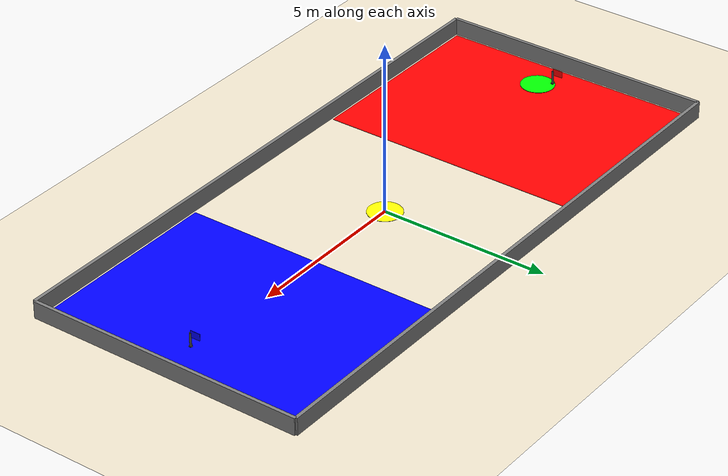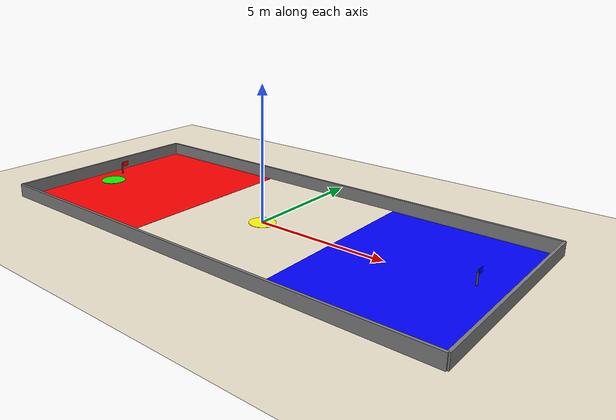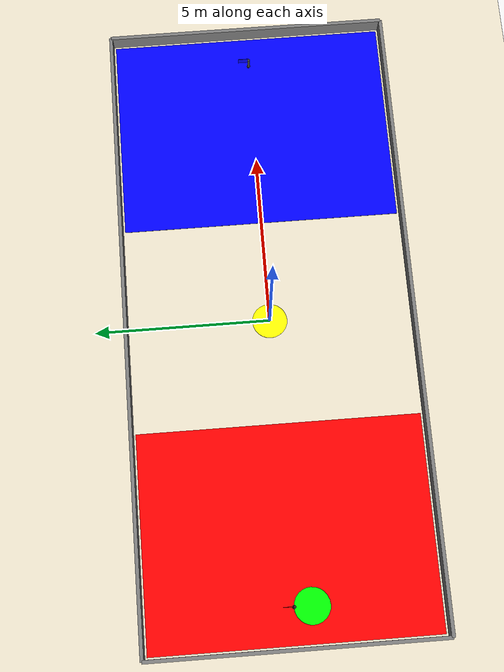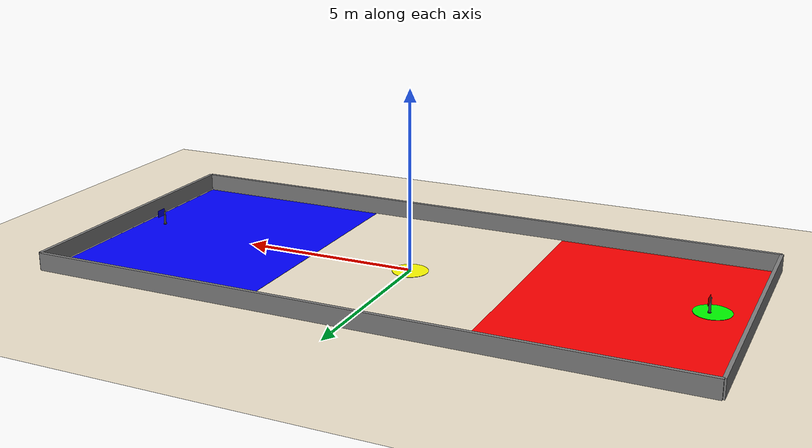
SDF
<sdf version="1.8">
 <world name="capture_the_flag_world">
  <plugin filename="ignition-gazebo-physics-system" name="ignition::gazebo::systems::Physics"/>
  <plugin filename="ignition-gazebo-user-commands-system" name="ignition::gazebo::systems::UserCommands"/>
  <plugin filename="ignition-gazebo-scene-broadcaster-system" name="ignition::gazebo::systems::SceneBroadcaster"/>
  <plugin filename="ignition-gazebo-sensors-system" name="ignition::gazebo::systems::Sensors">
   <render_engine>ogre2</render_engine>
  </plugin>
  <plugin filename="libignition-gazebo-contact-system.so" name="ignition::gazebo::systems::Contact"/>
  <scene><ambient>1.0 1.0 1.0</ambient><background>0.8 0.8 0.8</background></scene>
  <light name="sun" type="directional">
   <pose>0 0 10 0 0 0</pose>
   <diffuse>0.8 0.8 0.8 1</diffuse>
   <specular>0.2 0.2 0.2 1</specular>
   <attenuation>
    <range>1000</range>
    <constant>0.9</constant>
    <linear>0.01</linear>
    <quadratic>0.001</quadratic>
   </attenuation>
   <direction>-0.5 0.1 -0.9</direction>
  </light>
  <model name="ground_plane">
   <static>1</static>
   <plugin filename="ignition-gazebo-label-system" name="ignition::gazebo::systems::Label">
    <label>5</label>
   </plugin>
   <link name="ground_plane_link">
    <collision name="ground_plane_collision">
     <geometry><plane><normal>0 0 1</normal><size>100.0 100.0</size></plane></geometry>
    </collision>
    <visual name="ground_plane_visual">
     <cast_shadows>0</cast_shadows>
     <geometry><plane><normal>0 0 1</normal><size>100.0 100.0</size></plane></geometry>
     <material>
      <ambient>0.94 0.90 0.81 1</ambient>
      <diffuse>0.94 0.90 0.81 1</diffuse>
      <specular>1 1 1 0</specular>
     </material>
    </visual>
   </link>
  </model>
  <model name="red_base">
   <pose>-6.0 0 0 0 0 0</pose>
   <static>1</static>
   <plugin filename="ignition-gazebo-label-system" name="ignition::gazebo::systems::Label">
    <label>10</label>
   </plugin>
   <link name="red_base_link">
    <collision name="red_base_collision"><geometry><box><size>6 8 0.01</size></box></geometry></collision>
    <visual name="red_base_visual">
     <geometry><box><size>6 8 0.01</size></box></geometry>
     <material><ambient>1 0 0 1</ambient><diffuse>1 0 0 1</diffuse></material>
    </visual>
   </link>
  </model>
  <model name="blue_base">
   <pose>6.0 0 0 0 0 0</pose>
   <static>1</static>
   <plugin filename="ignition-gazebo-label-system" name="ignition::gazebo::systems::Label">
    <label>15</label>
   </plugin>
   <link name="blue_base_link">
    <collision name="blue_base_collision"><geometry><box><size>6 8 0.01</size></box></geometry></collision>
    <visual name="blue_base_visual">
     <geometry><box><size>6 8 0.01</size></box></geometry>
     <material><ambient>0 0 1 1</ambient><diffuse>0 0 1 1</diffuse></material>
    </visual>
   </link>
  </model>
  <model name="red_flag">
   <static>false</static>
   <link name="red_flag_link">
    <pose>-8.0 0 0.2 0 0 1.5708</pose>
    <visual name="pole_visual">
     <plugin filename="ignition-gazebo-label-system" name="ignition::gazebo::systems::Label">
      <label>20</label>
     </plugin>
     <pose>0 0 0.2 0 0 0</pose>
     <geometry><cylinder><radius>0.03</radius><length>0.4</length></cylinder></geometry>
     <material><ambient>0.2 0.2 0.2 1</ambient><diffuse>0.3 0.3 0.3 1</diffuse></material>
    </visual>
    <visual name="red_flag_panel_visual">
     <plugin filename="ignition-gazebo-label-system" name="ignition::gazebo::systems::Label">
      <label>21</label>
     </plugin>
     <pose>0.16 0 0.38 0 0 0</pose>
     <geometry><box><size>0.3 0.01 0.2</size></box></geometry>
     <material><ambient>1 0 0 1</ambient><diffuse>1 0 0 1</diffuse></material>
    </visual>
    <collision name="red_flag_collision">
     <pose>0 0 0.2 0 0 0</pose>
     <geometry><box><size>0.06 0.06 0.4</size></box></geometry>
    </collision>
    <visual name="base_visual">
     <pose>0 0 0.005 0 0 0</pose>
     <geometry><cylinder><radius>0.05</radius><length>0.01</length></cylinder></geometry>
     <material><ambient>0.1 0.1 0.1 1</ambient><diffuse>0.2 0.2 0.2 1</diffuse></material>
    </visual>
    <collision name="base_collision">
     <pose>0 0 0.005 0 0 0</pose>
     <geometry><box><size>0.1 0.1 0.01</size></box></geometry>
    </collision>
    <collision name="top_base_collision">
     <pose>0 0 0.30000000000000004 0 0 0</pose>
     <geometry><box><size>0.1 0.1 0.01</size></box></geometry>
    </collision>
    <inertial><mass>0.1</mass><inertia><ixx>0.001</ixx><iyy>0.001</iyy><izz>0.001</izz></inertia></inertial>
   </link>
  </model>
  <model name="blue_flag">
   <static>false</static>
   <link name="blue_flag_link">
    <pose>8.0 0 0.2 0 0 1.5708</pose>
    <visual name="pole_visual">
     <plugin filename="ignition-gazebo-label-system" name="ignition::gazebo::systems::Label">
      <label>25</label>
     </plugin>
     <pose>0 0 0.2 0 0 0</pose>
     <geometry><cylinder><radius>0.03</radius><length>0.4</length></cylinder></geometry>
     <material><ambient>0.2 0.2 0.2 1</ambient><diffuse>0.3 0.3 0.3 1</diffuse></material>
    </visual>
    <visual name="blue_flag_panel_visual">
     <plugin filename="ignition-gazebo-label-system" name="ignition::gazebo::systems::Label">
      <label>26</label>
     </plugin>
     <pose>0.16 0 0.38 0 0 0</pose>
     <geometry><box><size>0.3 0.01 0.2</size></box></geometry>
     <material><ambient>0 0 1 1</ambient><diffuse>0 0 1 1</diffuse></material>
    </visual>
    <collision name="blue_flag_collision">
     <pose>0 0 0.2 0 0 0</pose>
     <geometry><box><size>0.06 0.06 0.4</size></box></geometry>
    </collision>
    <visual name="base_visual">
     <pose>0 0 0.005 0 0 0</pose>
     <geometry><cylinder><radius>0.05</radius><length>0.01</length></cylinder></geometry>
     <material><ambient>0.1 0.1 0.1 1</ambient><diffuse>0.2 0.2 0.2 1</diffuse></material>
    </visual>
    <collision name="base_collision">
     <pose>0 0 0.005 0 0 0</pose>
     <geometry><box><size>0.1 0.1 0.01</size></box></geometry>
    </collision>
    <collision name="top_base_collision">
     <pose>0 0 0.30000000000000004 0 0 0</pose>
     <geometry><box><size>0.1 0.1 0.01</size></box></geometry>
    </collision>
    <inertial><mass>0.1</mass><inertia><ixx>0.001</ixx><iyy>0.001</iyy><izz>0.001</izz></inertia></inertial>
   </link>
  </model>
  <model name="center_zone">
   <static>1</static>
   <plugin filename="ignition-gazebo-label-system" name="ignition::gazebo::systems::Label">
    <label>30</label>
   </plugin>
   <link name="center_zone_link">
    <collision name="center_zone_collision">
     <geometry><cylinder><radius>0.5</radius><length>0.01</length></cylinder></geometry>
    </collision>
    <visual name="center_zone_visual">
     <geometry><cylinder><radius>0.5</radius><length>0.01</length></cylinder></geometry>
     <material><ambient>1 1 0 1</ambient><diffuse>1 1 0 1</diffuse></material>
    </visual>
   </link>
  </model>
  <model name="flag_deploy_zone">
   <pose>-8 -0.5 0.01 0 0 0</pose>
   <static>1</static>
   <plugin filename="ignition-gazebo-label-system" name="ignition::gazebo::systems::Label">
    <label>28</label>
   </plugin>
   <link name="flag_deploy_zone_link">
    <collision name="flag_deploy_zone_collision">
     <geometry><cylinder><radius>0.5</radius><length>0.01</length></cylinder></geometry>
    </collision>
    <visual name="flag_deploy_zone_visual">
     <geometry><cylinder><radius>0.5</radius><length>0.01</length></cylinder></geometry>
     <material><ambient>0 1 0 1</ambient><diffuse>0 1 0 1</diffuse></material>
    </visual>
   </link>
  </model>
  <model name="paredes_arena">
   <static>1</static>
   <plugin filename="ignition-gazebo-label-system" name="ignition::gazebo::systems::Label">
    <label>35</label>
   </plugin>
   <link name="parede_lateral_inferior">
    <pose>0 -4.1 0 0 0 0</pose>
    <collision name="col">
     <pose>0 0 0.25 0 0 0</pose>
     <geometry><box><size>18.2 0.1 0.5</size></box></geometry>
    </collision>
    <visual name="vis">
     <pose>0 0 0.25 0 0 0</pose>
     <geometry><box><size>18.2 0.1 0.5</size></box></geometry>
     <material>
      <ambient>0.5 0.5 0.5 1</ambient>
      <diffuse>0.5 0.5 0.5 1</diffuse>
      <specular>0.1 0.1 0.1 1</specular>
     </material>
    </visual>
   </link>
   <link name="parede_lateral_superior">
    <pose>0 4.1 0 0 0 3.14159</pose>
    <collision name="col">
     <pose>0 0 0.25 0 0 0</pose>
     <geometry><box><size>18.2 0.1 0.5</size></box></geometry>
    </collision>
    <visual name="vis">
     <pose>0 0 0.25 0 0 0</pose>
     <geometry><box><size>18.2 0.1 0.5</size></box></geometry>
     <material>
      <ambient>0.5 0.5 0.5 1</ambient>
      <diffuse>0.5 0.5 0.5 1</diffuse>
      <specular>0.1 0.1 0.1 1</specular>
     </material>
    </visual>
   </link>
   <link name="parede_fundo_blue">
    <pose>9.1 0 0 0 0 1.5708</pose>
    <collision name="col">
     <pose>0 0 0.25 0 0 0</pose>
     <geometry><box><size>8.2 0.1 0.5</size></box></geometry>
    </collision>
    <visual name="vis">
     <pose>0 0 0.25 0 0 0</pose>
     <geometry><box><size>8.2 0.1 0.5</size></box></geometry>
     <material>
      <ambient>0.5 0.5 0.5 1</ambient>
      <diffuse>0.5 0.5 0.5 1</diffuse>
      <specular>0.1 0.1 0.1 1</specular>
     </material>
    </visual>
   </link>
   <link name="parede_fund_red">
    <pose>-9.1 0 0 0 0 -1.5708</pose>
    <collision name="col">
     <pose>0 0 0.25 0 0 0</pose>
     <geometry><box><size>8.2 0.1 0.5</size></box></geometry>
    </collision>
    <visual name="vis">
     <pose>0 0 0.25 0 0 0</pose>
     <geometry><box><size>8.2 0.1 0.5</size></box></geometry>
     <material>
      <ambient>0.5 0.5 0.5 1</ambient>
      <diffuse>0.5 0.5 0.5 1</diffuse>
      <specular>0.1 0.1 0.1 1</specular>
     </material>
    </visual>
   </link>
  </model>
 </world>
</sdf>
